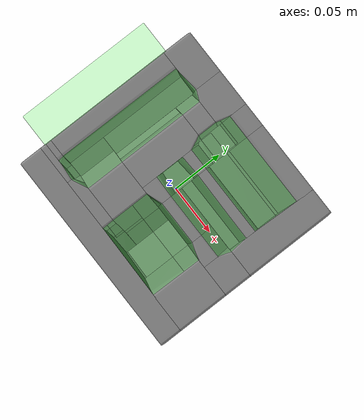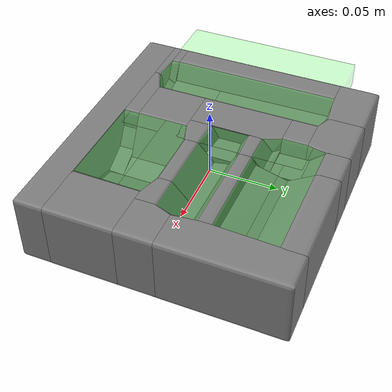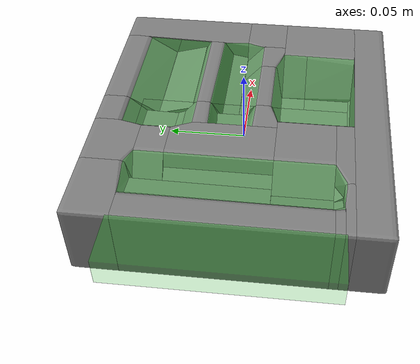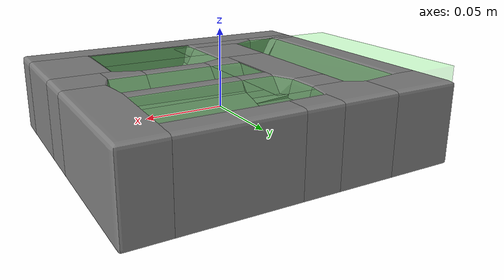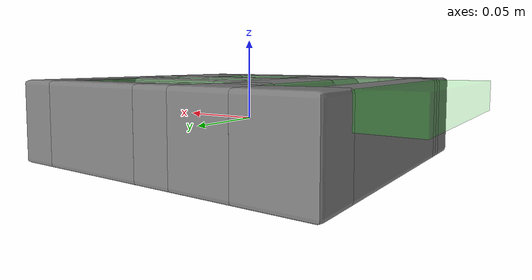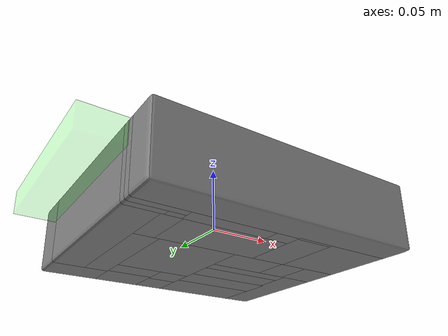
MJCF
<mujoco model="cosmetics_inlay_b">
  <default>
    <default class="visual">
      <geom group="1" type="mesh" contype="0" conaffinity="0" />
    </default>
    <default class="collision">
      <geom group="0" type="mesh" />
    </default>
  </default>
  <asset>
    <mesh file="cosmetics_inlay_b.obj" name="cosmetics_inlay_b" />
    <mesh file="cosmetics_inlay_b_collision_0.obj" name="cosmetics_inlay_b_collision_0" />
    <mesh file="cosmetics_inlay_b_collision_1.obj" name="cosmetics_inlay_b_collision_1" />
    <mesh file="cosmetics_inlay_b_collision_2.obj" name="cosmetics_inlay_b_collision_2" />
    <mesh file="cosmetics_inlay_b_collision_3.obj" name="cosmetics_inlay_b_collision_3" />
    <mesh file="cosmetics_inlay_b_collision_4.obj" name="cosmetics_inlay_b_collision_4" />
    <mesh file="cosmetics_inlay_b_collision_5.obj" name="cosmetics_inlay_b_collision_5" />
    <mesh file="cosmetics_inlay_b_collision_6.obj" name="cosmetics_inlay_b_collision_6" />
    <mesh file="cosmetics_inlay_b_collision_7.obj" name="cosmetics_inlay_b_collision_7" />
    <mesh file="cosmetics_inlay_b_collision_8.obj" name="cosmetics_inlay_b_collision_8" />
    <mesh file="cosmetics_inlay_b_collision_9.obj" name="cosmetics_inlay_b_collision_9" />
    <mesh file="cosmetics_inlay_b_collision_10.obj" name="cosmetics_inlay_b_collision_10" />
    <mesh file="cosmetics_inlay_b_collision_11.obj" name="cosmetics_inlay_b_collision_11" />
    <mesh file="cosmetics_inlay_b_collision_12.obj" name="cosmetics_inlay_b_collision_12" />
    <mesh file="cosmetics_inlay_b_collision_13.obj" name="cosmetics_inlay_b_collision_13" />
    <mesh file="cosmetics_inlay_b_collision_14.obj" name="cosmetics_inlay_b_collision_14" />
    <mesh file="cosmetics_inlay_b_collision_15.obj" name="cosmetics_inlay_b_collision_15" />
    <mesh file="cosmetics_inlay_b_collision_16.obj" name="cosmetics_inlay_b_collision_16" />
    <mesh file="cosmetics_inlay_b_collision_17.obj" name="cosmetics_inlay_b_collision_17" />
    <mesh file="cosmetics_inlay_b_collision_18.obj" name="cosmetics_inlay_b_collision_18" />
    <mesh file="cosmetics_inlay_b_collision_19.obj" name="cosmetics_inlay_b_collision_19" />
    <mesh file="cosmetics_inlay_b_collision_20.obj" name="cosmetics_inlay_b_collision_20" />
    <mesh file="cosmetics_inlay_b_collision_21.obj" name="cosmetics_inlay_b_collision_21" />
    <mesh file="cosmetics_inlay_b_collision_22.obj" name="cosmetics_inlay_b_collision_22" />
    <mesh file="cosmetics_inlay_b_collision_23.obj" name="cosmetics_inlay_b_collision_23" />
    <mesh file="cosmetics_inlay_b_collision_24.obj" name="cosmetics_inlay_b_collision_24" />
    <mesh file="cosmetics_inlay_b_collision_25.obj" name="cosmetics_inlay_b_collision_25" />
    <mesh file="cosmetics_inlay_b_collision_26.obj" name="cosmetics_inlay_b_collision_26" />
    <mesh file="cosmetics_inlay_b_collision_27.obj" name="cosmetics_inlay_b_collision_27" />
    <mesh file="cosmetics_inlay_b_collision_28.obj" name="cosmetics_inlay_b_collision_28" />
    <mesh file="cosmetics_inlay_b_collision_29.obj" name="cosmetics_inlay_b_collision_29" />
    <mesh file="cosmetics_inlay_b_collision_30.obj" name="cosmetics_inlay_b_collision_30" />
    <mesh file="cosmetics_inlay_b_collision_31.obj" name="cosmetics_inlay_b_collision_31" />
  </asset>
  <worldbody>
    <body>
      <body name="object" pos="0 0 0" quat="1 0 0 0">
        <body name="cosmetics_inlay_b" pos="0 0 0" quat="1 0 0 0">
          <inertial pos="0 0 0" mass="0.5" diaginertia="1e-3 1e-3 1e-3" />
          <geom type="mesh" mesh="cosmetics_inlay_b" group="1" quat="1 0 0 0" rgba="0.8 0.8 0.8 1" contype="0" conaffinity="0" />
          <geom type="mesh" mesh="cosmetics_inlay_b_collision_0" group="0" quat="1 0 0 0" />
          <geom type="mesh" mesh="cosmetics_inlay_b_collision_1" group="0" quat="1 0 0 0" />
          <geom type="mesh" mesh="cosmetics_inlay_b_collision_2" group="0" quat="1 0 0 0" />
          <geom type="mesh" mesh="cosmetics_inlay_b_collision_3" group="0" quat="1 0 0 0" />
          <geom type="mesh" mesh="cosmetics_inlay_b_collision_4" group="0" quat="1 0 0 0" />
          <geom type="mesh" mesh="cosmetics_inlay_b_collision_5" group="0" quat="1 0 0 0" />
          <geom type="mesh" mesh="cosmetics_inlay_b_collision_6" group="0" quat="1 0 0 0" />
          <geom type="mesh" mesh="cosmetics_inlay_b_collision_7" group="0" quat="1 0 0 0" />
          <geom type="mesh" mesh="cosmetics_inlay_b_collision_8" group="0" quat="1 0 0 0" />
          <geom type="mesh" mesh="cosmetics_inlay_b_collision_9" group="0" quat="1 0 0 0" />
          <geom type="mesh" mesh="cosmetics_inlay_b_collision_10" group="0" quat="1 0 0 0" />
          <geom type="mesh" mesh="cosmetics_inlay_b_collision_11" group="0" quat="1 0 0 0" />
          <geom type="mesh" mesh="cosmetics_inlay_b_collision_12" group="0" quat="1 0 0 0" />
          <geom type="mesh" mesh="cosmetics_inlay_b_collision_13" group="0" quat="1 0 0 0" />
          <geom type="mesh" mesh="cosmetics_inlay_b_collision_14" group="0" quat="1 0 0 0" />
          <geom type="mesh" mesh="cosmetics_inlay_b_collision_15" group="0" quat="1 0 0 0" />
          <geom type="mesh" mesh="cosmetics_inlay_b_collision_16" group="0" quat="1 0 0 0" />
          <geom type="mesh" mesh="cosmetics_inlay_b_collision_17" group="0" quat="1 0 0 0" />
          <geom type="mesh" mesh="cosmetics_inlay_b_collision_18" group="0" quat="1 0 0 0" />
          <geom type="mesh" mesh="cosmetics_inlay_b_collision_19" group="0" quat="1 0 0 0" />
          <geom type="mesh" mesh="cosmetics_inlay_b_collision_20" group="0" quat="1 0 0 0" />
          <geom type="mesh" mesh="cosmetics_inlay_b_collision_21" group="0" quat="1 0 0 0" />
          <geom type="mesh" mesh="cosmetics_inlay_b_collision_22" group="0" quat="1 0 0 0" />
          <geom type="mesh" mesh="cosmetics_inlay_b_collision_23" group="0" quat="1 0 0 0" />
          <geom type="mesh" mesh="cosmetics_inlay_b_collision_24" group="0" quat="1 0 0 0" />
          <geom type="mesh" mesh="cosmetics_inlay_b_collision_25" group="0" quat="1 0 0 0" />
          <geom type="mesh" mesh="cosmetics_inlay_b_collision_26" group="0" quat="1 0 0 0" />
          <geom type="mesh" mesh="cosmetics_inlay_b_collision_27" group="0" quat="1 0 0 0" />
          <geom type="mesh" mesh="cosmetics_inlay_b_collision_28" group="0" quat="1 0 0 0" />
          <geom type="mesh" mesh="cosmetics_inlay_b_collision_29" group="0" quat="1 0 0 0" />
          <geom type="mesh" mesh="cosmetics_inlay_b_collision_30" group="0" quat="1 0 0 0" />
          <geom type="mesh" mesh="cosmetics_inlay_b_collision_31" group="0" quat="1 0 0 0" />
          <site name="goal_point_cream_bottle" type="sphere" size="0.003" pos="0.026151 0.026151 0.011580" quat="1 0 0 0" rgba="1 0 0 0.8" group="0" />
          <site name="goal_area_cream_bottle" type="box" size="0.050050 0.050050 0.006710" pos="0.026151 0.026151 0.018290" quat="1 0 0 0" rgba="0 1 0 0.2" group="0" />
          <site name="goal_point_jar" type="sphere" size="0.003" pos="0.025076 -0.045993 -0.011740" quat="1 0 0 0" rgba="1 0 0 0.8" group="0" />
          <site name="goal_area_cream_jar" type="box" size="0.036740 0.036740 0.018370" pos="0.025076 -0.045993 0.006630" quat="1 0 0 0" rgba="0 1 0 0.2" group="0" />
          <site name="goal_point_pump_bottle" type="sphere" size="0.003" pos="-0.065 0 0.007015" quat="1 0 0 0" rgba="1 0 0 0.8" group="0" />
          <site name="goal_area_pump_bottle" type="box" size="0.067100 0.067100 0.008993" pos="-0.065 0 0.016008" quat="1 0 0 0" rgba="0 1 0 0.2" group="0" />
          <site name="goal_point_serum_bottle" type="sphere" size="0.003" pos="0.027063 0.007534 0.009985" quat="1 0 0 0" rgba="1 0 0 0.8" group="0" />
          <site name="goal_area_serum_bottle" type="box" size="0.046530 0.046530 0.007508" pos="0.027063 0.007534 0.017493" quat="1 0 0 0" rgba="0 1 0 0.2" group="0" />
        </body>
      </body>
      <site name="bottom_site" pos="0 0 -0.0245" size="0.01" rgba="0 0 0 0" quat="1 0 0 0" />
      <site name="top_site" pos="0 0 0.0245" size="0.01" rgba="0 0 0 0" quat="1 0 0 0" />
      <site name="horizontal_radius_site" pos="0.1 0.0935 0" size="0.01" rgba="0 0 0 0" quat="1 0 0 0" />
    </body>
  </worldbody>
</mujoco>
